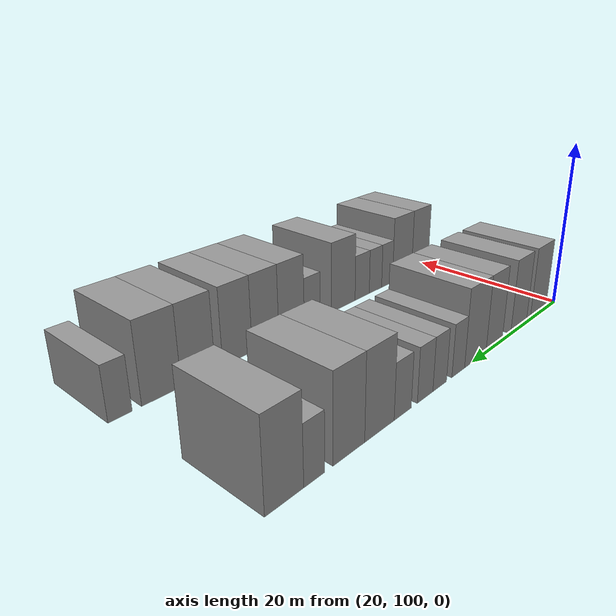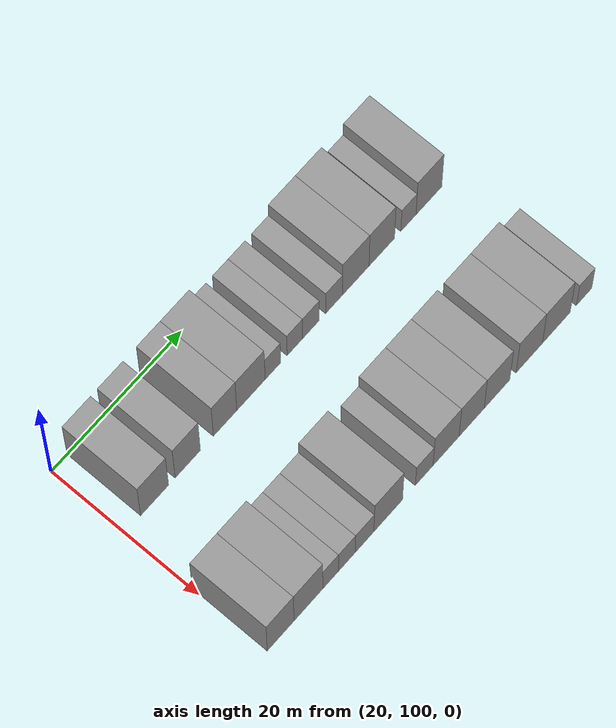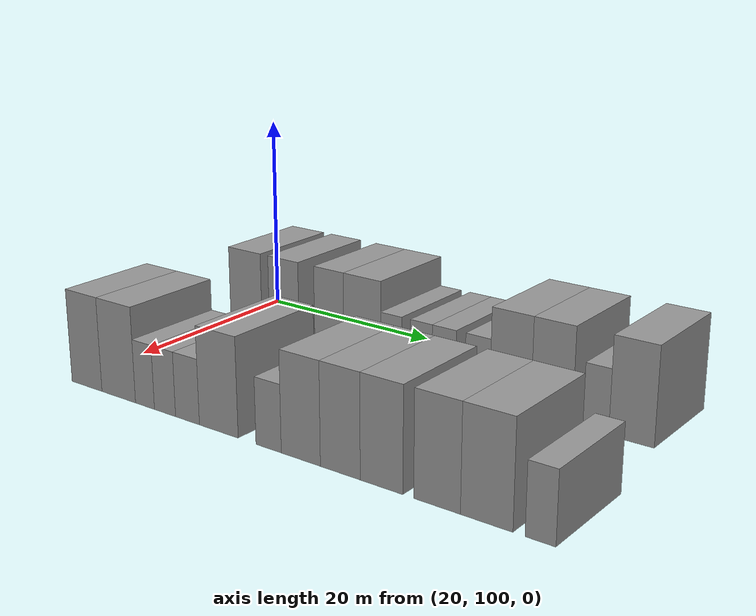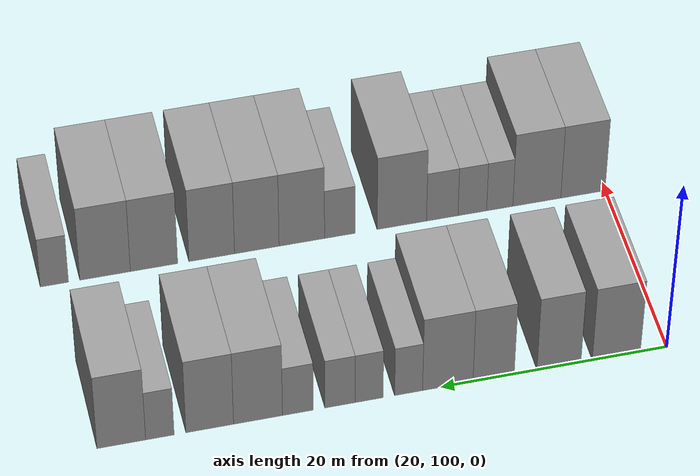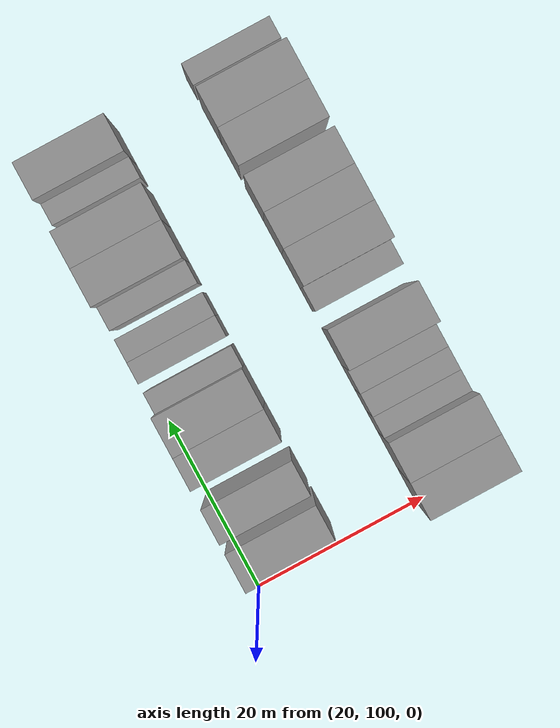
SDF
<sdf version="1.6">
 <world name="default">
  <model name="building_74">
   <static>1</static>
   <pose>25.0000 104.5269 0 0.000000 0.000000 0.000000</pose>
   <link name="link">
    <pose>0 0 4.50 0 0 0</pose>
    <collision name="collision"><geometry><box><size>10.0000 4.2781 9.0000</size></box></geometry></collision>
    <visual name="visual">
     <cast_shadows>0</cast_shadows>
     <geometry><box><size>10.0000 4.2781 9.0000</size></box></geometry>
     <material>
      <script>
       <uri>model://grey_wall/materials/scripts</uri>
       <uri>model://grey_wall/materials/textures</uri>
       <name>vrc/grey_wall</name>
      </script>
     </material>
    </visual>
   </link>
  </model>
  <model name="building_75">
   <static>1</static>
   <pose>25.0000 109.6115 0 0.000000 0.000000 0.000000</pose>
   <link name="link">
    <pose>0 0 4.50 0 0 0</pose>
    <collision name="collision"><geometry><box><size>10.0000 3.8910 9.0000</size></box></geometry></collision>
    <visual name="visual">
     <cast_shadows>0</cast_shadows>
     <geometry><box><size>10.0000 3.8910 9.0000</size></box></geometry>
     <material>
      <script>
       <uri>model://grey_wall/materials/scripts</uri>
       <uri>model://grey_wall/materials/textures</uri>
       <name>vrc/grey_wall</name>
      </script>
     </material>
    </visual>
   </link>
  </model>
  <model name="building_76">
   <static>1</static>
   <pose>25.0000 115.3687 0 0.000000 0.000000 0.000000</pose>
   <link name="link">
    <pose>0 0 4.50 0 0 0</pose>
    <collision name="collision"><geometry><box><size>10.0000 3.6234 9.0000</size></box></geometry></collision>
    <visual name="visual">
     <cast_shadows>0</cast_shadows>
     <geometry><box><size>10.0000 3.6234 9.0000</size></box></geometry>
     <material>
      <script>
       <uri>model://grey_wall/materials/scripts</uri>
       <uri>model://grey_wall/materials/textures</uri>
       <name>vrc/grey_wall</name>
      </script>
     </material>
    </visual>
   </link>
  </model>
  <model name="building_77">
   <static>1</static>
   <pose>25.0000 119.3893 0 0.000000 0.000000 0.000000</pose>
   <link name="link">
    <pose>0 0 4.50 0 0 0</pose>
    <collision name="collision"><geometry><box><size>10.0000 4.4178 9.0000</size></box></geometry></collision>
    <visual name="visual">
     <cast_shadows>0</cast_shadows>
     <geometry><box><size>10.0000 4.4178 9.0000</size></box></geometry>
     <material>
      <script>
       <uri>model://grey_wall/materials/scripts</uri>
       <uri>model://grey_wall/materials/textures</uri>
       <name>vrc/grey_wall</name>
      </script>
     </material>
    </visual>
   </link>
  </model>
  <model name="building_78">
   <static>1</static>
   <pose>25.0000 122.8151 0 0.000000 0.000000 0.000000</pose>
   <link name="link">
    <pose>0 0 3.00 0 0 0</pose>
    <collision name="collision"><geometry><box><size>10.0000 2.4338 6.0000</size></box></geometry></collision>
    <visual name="visual">
     <cast_shadows>0</cast_shadows>
     <geometry><box><size>10.0000 2.4338 6.0000</size></box></geometry>
     <material>
      <script>
       <uri>model://grey_wall/materials/scripts</uri>
       <uri>model://grey_wall/materials/textures</uri>
       <name>vrc/grey_wall</name>
      </script>
     </material>
    </visual>
   </link>
  </model>
  <model name="building_79">
   <static>1</static>
   <pose>25.0000 126.2478 0 0.000000 0.000000 0.000000</pose>
   <link name="link">
    <pose>0 0 3.00 0 0 0</pose>
    <collision name="collision"><geometry><box><size>10.0000 2.4316 6.0000</size></box></geometry></collision>
    <visual name="visual">
     <cast_shadows>0</cast_shadows>
     <geometry><box><size>10.0000 2.4316 6.0000</size></box></geometry>
     <material>
      <script>
       <uri>model://grey_wall/materials/scripts</uri>
       <uri>model://grey_wall/materials/textures</uri>
       <name>vrc/grey_wall</name>
      </script>
     </material>
    </visual>
   </link>
  </model>
  <model name="building_80">
   <static>1</static>
   <pose>25.0000 128.7735 0 0.000000 0.000000 0.000000</pose>
   <link name="link">
    <pose>0 0 3.00 0 0 0</pose>
    <collision name="collision"><geometry><box><size>10.0000 2.6198 6.0000</size></box></geometry></collision>
    <visual name="visual">
     <cast_shadows>0</cast_shadows>
     <geometry><box><size>10.0000 2.6198 6.0000</size></box></geometry>
     <material>
      <script>
       <uri>model://grey_wall/materials/scripts</uri>
       <uri>model://grey_wall/materials/textures</uri>
       <name>vrc/grey_wall</name>
      </script>
     </material>
    </visual>
   </link>
  </model>
  <model name="building_81">
   <static>1</static>
   <pose>25.0000 132.4123 0 0.000000 0.000000 0.000000</pose>
   <link name="link">
    <pose>0 0 3.00 0 0 0</pose>
    <collision name="collision"><geometry><box><size>10.0000 2.6578 6.0000</size></box></geometry></collision>
    <visual name="visual">
     <cast_shadows>0</cast_shadows>
     <geometry><box><size>10.0000 2.6578 6.0000</size></box></geometry>
     <material>
      <script>
       <uri>model://grey_wall/materials/scripts</uri>
       <uri>model://grey_wall/materials/textures</uri>
       <name>vrc/grey_wall</name>
      </script>
     </material>
    </visual>
   </link>
  </model>
  <model name="building_82">
   <static>1</static>
   <pose>25.0000 135.8461 0 0.000000 0.000000 0.000000</pose>
   <link name="link">
    <pose>0 0 4.50 0 0 0</pose>
    <collision name="collision"><geometry><box><size>10.0000 4.2099 9.0000</size></box></geometry></collision>
    <visual name="visual">
     <cast_shadows>0</cast_shadows>
     <geometry><box><size>10.0000 4.2099 9.0000</size></box></geometry>
     <material>
      <script>
       <uri>model://grey_wall/materials/scripts</uri>
       <uri>model://grey_wall/materials/textures</uri>
       <name>vrc/grey_wall</name>
      </script>
     </material>
    </visual>
   </link>
  </model>
  <model name="building_83">
   <static>1</static>
   <pose>25.0000 139.9938 0 0.000000 0.000000 0.000000</pose>
   <link name="link">
    <pose>0 0 4.50 0 0 0</pose>
    <collision name="collision"><geometry><box><size>10.0000 4.0855 9.0000</size></box></geometry></collision>
    <visual name="visual">
     <cast_shadows>0</cast_shadows>
     <geometry><box><size>10.0000 4.0855 9.0000</size></box></geometry>
     <material>
      <script>
       <uri>model://grey_wall/materials/scripts</uri>
       <uri>model://grey_wall/materials/textures</uri>
       <name>vrc/grey_wall</name>
      </script>
     </material>
    </visual>
   </link>
  </model>
  <model name="building_84">
   <static>1</static>
   <pose>25.0000 144.2521 0 0.000000 0.000000 0.000000</pose>
   <link name="link">
    <pose>0 0 3.00 0 0 0</pose>
    <collision name="collision"><geometry><box><size>10.0000 2.4310 6.0000</size></box></geometry></collision>
    <visual name="visual">
     <cast_shadows>0</cast_shadows>
     <geometry><box><size>10.0000 2.4310 6.0000</size></box></geometry>
     <material>
      <script>
       <uri>model://grey_wall/materials/scripts</uri>
       <uri>model://grey_wall/materials/textures</uri>
       <name>vrc/grey_wall</name>
      </script>
     </material>
    </visual>
   </link>
  </model>
  <model name="building_85">
   <static>1</static>
   <pose>25.0000 147.5403 0 0.000000 0.000000 0.000000</pose>
   <link name="link">
    <pose>0 0 4.50 0 0 0</pose>
    <collision name="collision"><geometry><box><size>10.0000 4.1455 9.0000</size></box></geometry></collision>
    <visual name="visual">
     <cast_shadows>0</cast_shadows>
     <geometry><box><size>10.0000 4.1455 9.0000</size></box></geometry>
     <material>
      <script>
       <uri>model://grey_wall/materials/scripts</uri>
       <uri>model://grey_wall/materials/textures</uri>
       <name>vrc/grey_wall</name>
      </script>
     </material>
    </visual>
   </link>
  </model>
  <model name="building_176">
   <static>1</static>
   <pose>44.0000 102.1173 0 0.000000 0.000000 0.000000</pose>
   <link name="link">
    <pose>0 0 4.50 0 0 0</pose>
    <collision name="collision"><geometry><box><size>10.0000 4.0933 9.0000</size></box></geometry></collision>
    <visual name="visual">
     <cast_shadows>0</cast_shadows>
     <geometry><box><size>10.0000 4.0933 9.0000</size></box></geometry>
     <material>
      <script>
       <uri>model://grey_wall/materials/scripts</uri>
       <uri>model://grey_wall/materials/textures</uri>
       <name>vrc/grey_wall</name>
      </script>
     </material>
    </visual>
   </link>
  </model>
  <model name="building_177">
   <static>1</static>
   <pose>44.0000 106.3735 0 0.000000 0.000000 0.000000</pose>
   <link name="link">
    <pose>0 0 4.50 0 0 0</pose>
    <collision name="collision"><geometry><box><size>10.0000 4.4191 9.0000</size></box></geometry></collision>
    <visual name="visual">
     <cast_shadows>0</cast_shadows>
     <geometry><box><size>10.0000 4.4191 9.0000</size></box></geometry>
     <material>
      <script>
       <uri>model://grey_wall/materials/scripts</uri>
       <uri>model://grey_wall/materials/textures</uri>
       <name>vrc/grey_wall</name>
      </script>
     </material>
    </visual>
   </link>
  </model>
  <model name="building_178">
   <static>1</static>
   <pose>44.0000 109.7889 0 0.000000 0.000000 0.000000</pose>
   <link name="link">
    <pose>0 0 3.00 0 0 0</pose>
    <collision name="collision"><geometry><box><size>10.0000 2.4117 6.0000</size></box></geometry></collision>
    <visual name="visual">
     <cast_shadows>0</cast_shadows>
     <geometry><box><size>10.0000 2.4117 6.0000</size></box></geometry>
     <material>
      <script>
       <uri>model://grey_wall/materials/scripts</uri>
       <uri>model://grey_wall/materials/textures</uri>
       <name>vrc/grey_wall</name>
      </script>
     </material>
    </visual>
   </link>
  </model>
  <model name="building_179">
   <static>1</static>
   <pose>44.0000 112.3052 0 0.000000 0.000000 0.000000</pose>
   <link name="link">
    <pose>0 0 3.00 0 0 0</pose>
    <collision name="collision"><geometry><box><size>10.0000 2.6210 6.0000</size></box></geometry></collision>
    <visual name="visual">
     <cast_shadows>0</cast_shadows>
     <geometry><box><size>10.0000 2.6210 6.0000</size></box></geometry>
     <material>
      <script>
       <uri>model://grey_wall/materials/scripts</uri>
       <uri>model://grey_wall/materials/textures</uri>
       <name>vrc/grey_wall</name>
      </script>
     </material>
    </visual>
   </link>
  </model>
  <model name="building_180">
   <static>1</static>
   <pose>44.0000 115.0538 0 0.000000 0.000000 0.000000</pose>
   <link name="link">
    <pose>0 0 3.00 0 0 0</pose>
    <collision name="collision"><geometry><box><size>10.0000 2.8763 6.0000</size></box></geometry></collision>
    <visual name="visual">
     <cast_shadows>0</cast_shadows>
     <geometry><box><size>10.0000 2.8763 6.0000</size></box></geometry>
     <material>
      <script>
       <uri>model://grey_wall/materials/scripts</uri>
       <uri>model://grey_wall/materials/textures</uri>
       <name>vrc/grey_wall</name>
      </script>
     </material>
    </visual>
   </link>
  </model>
  <model name="building_181">
   <static>1</static>
   <pose>44.0000 118.7380 0 0.000000 0.000000 0.000000</pose>
   <link name="link">
    <pose>0 0 4.50 0 0 0</pose>
    <collision name="collision"><geometry><box><size>10.0000 4.4922 9.0000</size></box></geometry></collision>
    <visual name="visual">
     <cast_shadows>0</cast_shadows>
     <geometry><box><size>10.0000 4.4922 9.0000</size></box></geometry>
     <material>
      <script>
       <uri>model://grey_wall/materials/scripts</uri>
       <uri>model://grey_wall/materials/textures</uri>
       <name>vrc/grey_wall</name>
      </script>
     </material>
    </visual>
   </link>
  </model>
  <model name="building_182">
   <static>1</static>
   <pose>44.0000 124.3640 0 0.000000 0.000000 0.000000</pose>
   <link name="link">
    <pose>0 0 3.00 0 0 0</pose>
    <collision name="collision"><geometry><box><size>10.0000 2.7597 6.0000</size></box></geometry></collision>
    <visual name="visual">
     <cast_shadows>0</cast_shadows>
     <geometry><box><size>10.0000 2.7597 6.0000</size></box></geometry>
     <material>
      <script>
       <uri>model://grey_wall/materials/scripts</uri>
       <uri>model://grey_wall/materials/textures</uri>
       <name>vrc/grey_wall</name>
      </script>
     </material>
    </visual>
   </link>
  </model>
  <model name="building_183">
   <static>1</static>
   <pose>44.0000 127.7962 0 0.000000 0.000000 0.000000</pose>
   <link name="link">
    <pose>0 0 4.50 0 0 0</pose>
    <collision name="collision"><geometry><box><size>10.0000 4.1047 9.0000</size></box></geometry></collision>
    <visual name="visual">
     <cast_shadows>0</cast_shadows>
     <geometry><box><size>10.0000 4.1047 9.0000</size></box></geometry>
     <material>
      <script>
       <uri>model://grey_wall/materials/scripts</uri>
       <uri>model://grey_wall/materials/textures</uri>
       <name>vrc/grey_wall</name>
      </script>
     </material>
    </visual>
   </link>
  </model>
  <model name="building_184">
   <static>1</static>
   <pose>44.0000 131.8458 0 0.000000 0.000000 0.000000</pose>
   <link name="link">
    <pose>0 0 4.50 0 0 0</pose>
    <collision name="collision"><geometry><box><size>10.0000 3.9945 9.0000</size></box></geometry></collision>
    <visual name="visual">
     <cast_shadows>0</cast_shadows>
     <geometry><box><size>10.0000 3.9945 9.0000</size></box></geometry>
     <material>
      <script>
       <uri>model://grey_wall/materials/scripts</uri>
       <uri>model://grey_wall/materials/textures</uri>
       <name>vrc/grey_wall</name>
      </script>
     </material>
    </visual>
   </link>
  </model>
  <model name="building_185">
   <static>1</static>
   <pose>44.0000 135.8858 0 0.000000 0.000000 0.000000</pose>
   <link name="link">
    <pose>0 0 4.50 0 0 0</pose>
    <collision name="collision"><geometry><box><size>10.0000 4.0855 9.0000</size></box></geometry></collision>
    <visual name="visual">
     <cast_shadows>0</cast_shadows>
     <geometry><box><size>10.0000 4.0855 9.0000</size></box></geometry>
     <material>
      <script>
       <uri>model://grey_wall/materials/scripts</uri>
       <uri>model://grey_wall/materials/textures</uri>
       <name>vrc/grey_wall</name>
      </script>
     </material>
    </visual>
   </link>
  </model>
  <model name="building_186">
   <static>1</static>
   <pose>44.0000 141.0326 0 0.000000 0.000000 0.000000</pose>
   <link name="link">
    <pose>0 0 4.50 0 0 0</pose>
    <collision name="collision"><geometry><box><size>10.0000 4.2081 9.0000</size></box></geometry></collision>
    <visual name="visual">
     <cast_shadows>0</cast_shadows>
     <geometry><box><size>10.0000 4.2081 9.0000</size></box></geometry>
     <material>
      <script>
       <uri>model://grey_wall/materials/scripts</uri>
       <uri>model://grey_wall/materials/textures</uri>
       <name>vrc/grey_wall</name>
      </script>
     </material>
    </visual>
   </link>
  </model>
  <model name="building_187">
   <static>1</static>
   <pose>44.0000 145.3796 0 0.000000 0.000000 0.000000</pose>
   <link name="link">
    <pose>0 0 4.50 0 0 0</pose>
    <collision name="collision"><geometry><box><size>10.0000 4.4859 9.0000</size></box></geometry></collision>
    <visual name="visual">
     <cast_shadows>0</cast_shadows>
     <geometry><box><size>10.0000 4.4859 9.0000</size></box></geometry>
     <material>
      <script>
       <uri>model://grey_wall/materials/scripts</uri>
       <uri>model://grey_wall/materials/textures</uri>
       <name>vrc/grey_wall</name>
      </script>
     </material>
    </visual>
   </link>
  </model>
  <model name="building_188">
   <static>1</static>
   <pose>44.0000 149.8701 0 0.000000 0.000000 0.000000</pose>
   <link name="link">
    <pose>0 0 3.00 0 0 0</pose>
    <collision name="collision"><geometry><box><size>10.0000 2.4951 6.0000</size></box></geometry></collision>
    <visual name="visual">
     <cast_shadows>0</cast_shadows>
     <geometry><box><size>10.0000 2.4951 6.0000</size></box></geometry>
     <material>
      <script>
       <uri>model://grey_wall/materials/scripts</uri>
       <uri>model://grey_wall/materials/textures</uri>
       <name>vrc/grey_wall</name>
      </script>
     </material>
    </visual>
   </link>
  </model>
 </world>
</sdf>
